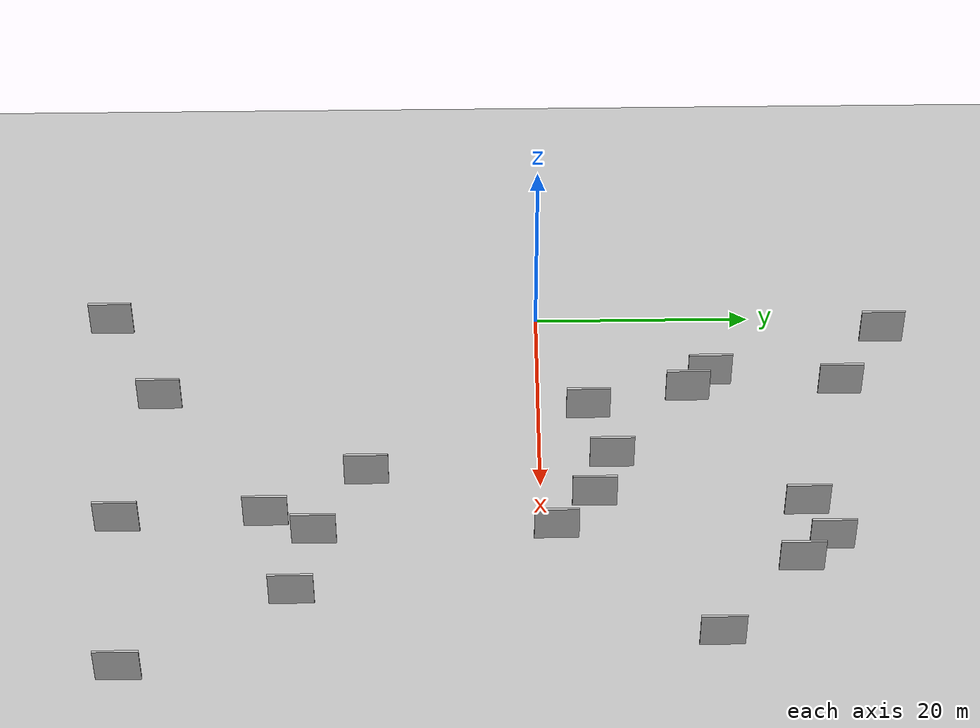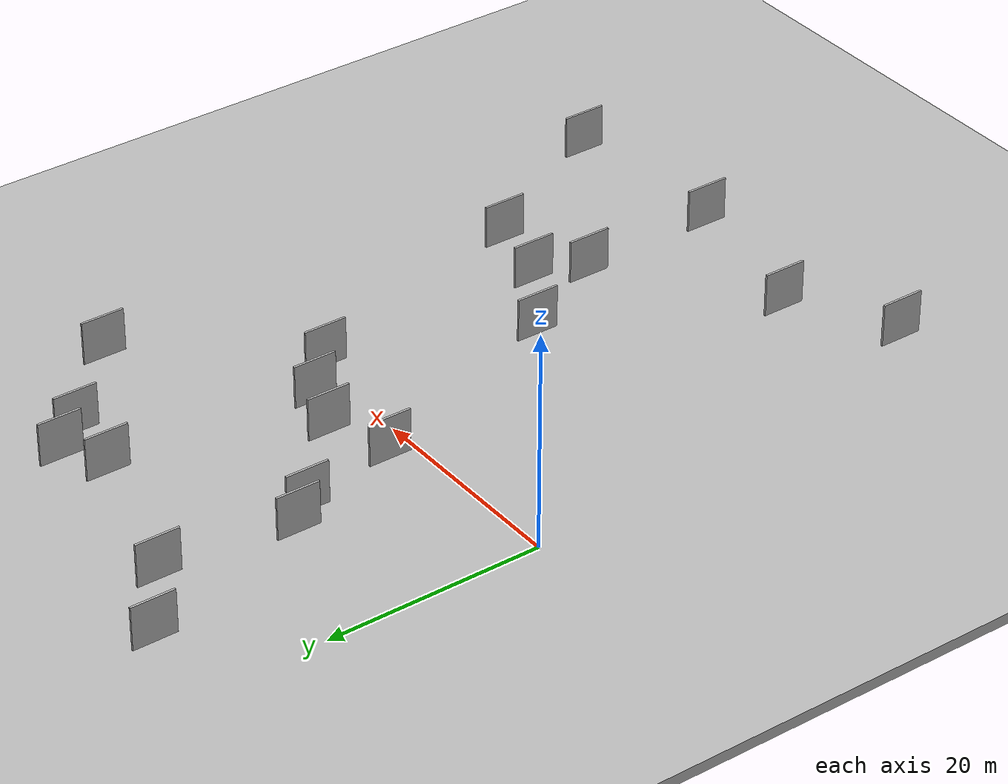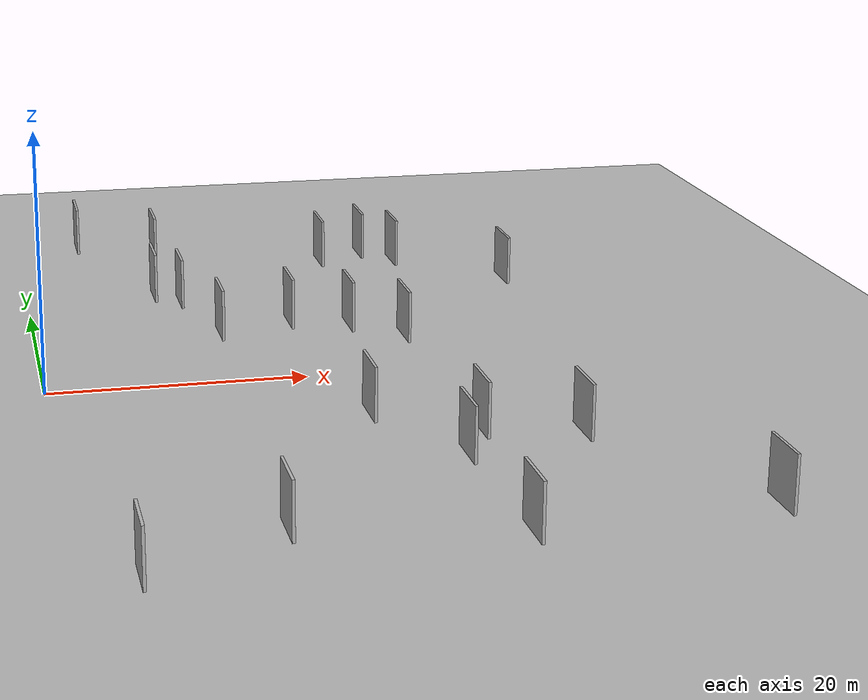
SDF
<?xml version="1.0" encoding="utf-8"?>

<sdf version="1.6">

   <world name="default">

      <gui fullscreen="0">

         <camera name="user_camera">

            <pose>-15 0 4.57585 0 0 0</pose>

            <view_controller>orbit</view_controller>

         </camera>

      </gui>

      <scene>

         <sky>

           <clouds>

             <speed>12</speed>

           </clouds>

         </sky>

         <ambient>0.4 0.4 0.4 1</ambient>

         <background>0.7 0.7 0.7 1</background>

         <shadows>1</shadows>

      </scene>

      <gravity>0 0 -9.8066</gravity>

      <magnetic_field>6e-06 2.3e-05 -4.2e-05</magnetic_field>

      <physics default="0" name="default_physics" type="ode">

         <ode>

            <solver>

               <type>quick</type>

               <iters>10</iters>

               <sor>1.0</sor>

               <use_dynamic_moi_rescaling>0</use_dynamic_moi_rescaling>

            </solver>

            <constraints>

               <cfm>0</cfm>

               <erp>0.2</erp>

               <contact_max_correcting_vel>100</contact_max_correcting_vel>

               <contact_surface_layer>0.001</contact_surface_layer>

            </constraints>

         </ode>

         <max_step_size>0.004</max_step_size>

         <real_time_factor>1</real_time_factor>

         <real_time_update_rate>250</real_time_update_rate>

      </physics>

      <light name="sun" type="directional">

         <cast_shadows>1</cast_shadows>

         <pose>0 0 10 0 0 0</pose>

         <diffuse>0.8 0.8 0.8 1</diffuse>

         <specular>0.2 0.2 0.2 1</specular>

         <attenuation>

            <range>1000</range>

            <constant>0.9</constant>

            <linear>0.01</linear>

            <quadratic>0.001</quadratic>

         </attenuation>

         <direction>-0.5 0.1 -0.9</direction>

      </light>

      <include>

         <name>ground_plane_1</name>

         <uri>model://HANNAS_ground_plane</uri>

         <pose>0 0 0  0 0 0</pose>

      </include>

      <include>

         <name>ground_plane_2</name>

         <uri>model://HANNAS_ground_plane</uri>

         <pose>100 0 0  0 0 0</pose>

      </include>

      <model name="HANNAS_wall_1">

         <static>1</static>

         <pose frame="">11.3279 27.7299 2.5 0.000000 0.000000 1.570796</pose>

         <link name="link">

            <pose frame="">0 0 2.00 0 0 0</pose>

            <collision name="collision">

               <geometry>

                  <box>

                     <size>4.00 0.2 4.00</size>

                  </box>

               </geometry>

               <max_contacts>10</max_contacts>

               <surface>

                  <contact>

                     <ode/>

                  </contact>

                  <bounce/>

                  <friction>

                     <torsional>

                        <ode/>

                     </torsional>

                     <ode/>

                  </friction>

               </surface>

            </collision>

            <visual name="visual">

               <cast_shadows>0</cast_shadows>

               <geometry>

                  <box>

                     <size>4.00 0.2 4.00</size>

                  </box>

               </geometry>

               <material>

                  <script>

                     <uri>model://HANNAS_wall/materials/scripts</uri>

                     <uri>model://HANNAS_wall/materials/textures</uri>

                     <name>vrc/HANNAS_wall</name>

                  </script>

               </material>

            </visual>

            <self_collide>0</self_collide>

            <enable_wind>0</enable_wind>

            <kinematic>0</kinematic>

         </link>

      </model>

      <model name="HANNAS_wall_2">

         <static>1</static>

         <pose frame="">11.9432 13.6432 2.5 0.000000 0.000000 1.570796</pose>

         <link name="link">

            <pose frame="">0 0 2.00 0 0 0</pose>

            <collision name="collision">

               <geometry>

                  <box>

                     <size>4.00 0.2 4.00</size>

                  </box>

               </geometry>

               <max_contacts>10</max_contacts>

               <surface>

                  <contact>

                     <ode/>

                  </contact>

                  <bounce/>

                  <friction>

                     <torsional>

                        <ode/>

                     </torsional>

                     <ode/>

                  </friction>

               </surface>

            </collision>

            <visual name="visual">

               <cast_shadows>0</cast_shadows>

               <geometry>

                  <box>

                     <size>4.00 0.2 4.00</size>

                  </box>

               </geometry>

               <material>

                  <script>

                     <uri>model://HANNAS_wall/materials/scripts</uri>

                     <uri>model://HANNAS_wall/materials/textures</uri>

                     <name>vrc/HANNAS_wall</name>

                  </script>

               </material>

            </visual>

            <self_collide>0</self_collide>

            <enable_wind>0</enable_wind>

            <kinematic>0</kinematic>

         </link>

      </model>

      <model name="HANNAS_wall_3">

         <static>1</static>

         <pose frame="">12.3072 -34.8202 2.5 0.000000 0.000000 1.570796</pose>

         <link name="link">

            <pose frame="">0 0 2.00 0 0 0</pose>

            <collision name="collision">

               <geometry>

                  <box>

                     <size>4.00 0.2 4.00</size>

                  </box>

               </geometry>

               <max_contacts>10</max_contacts>

               <surface>

                  <contact>

                     <ode/>

                  </contact>

                  <bounce/>

                  <friction>

                     <torsional>

                        <ode/>

                     </torsional>

                     <ode/>

                  </friction>

               </surface>

            </collision>

            <visual name="visual">

               <cast_shadows>0</cast_shadows>

               <geometry>

                  <box>

                     <size>4.00 0.2 4.00</size>

                  </box>

               </geometry>

               <material>

                  <script>

                     <uri>model://HANNAS_wall/materials/scripts</uri>

                     <uri>model://HANNAS_wall/materials/textures</uri>

                     <name>vrc/HANNAS_wall</name>

                  </script>

               </material>

            </visual>

            <self_collide>0</self_collide>

            <enable_wind>0</enable_wind>

            <kinematic>0</kinematic>

         </link>

      </model>

      <model name="HANNAS_wall_4">

         <static>1</static>

         <pose frame="">21.4524 -15.7537 2.5 0.000000 0.000000 1.570796</pose>

         <link name="link">

            <pose frame="">0 0 2.00 0 0 0</pose>

            <collision name="collision">

               <geometry>

                  <box>

                     <size>4.00 0.2 4.00</size>

                  </box>

               </geometry>

               <max_contacts>10</max_contacts>

               <surface>

                  <contact>

                     <ode/>

                  </contact>

                  <bounce/>

                  <friction>

                     <torsional>

                        <ode/>

                     </torsional>

                     <ode/>

                  </friction>

               </surface>

            </collision>

            <visual name="visual">

               <cast_shadows>0</cast_shadows>

               <geometry>

                  <box>

                     <size>4.00 0.2 4.00</size>

                  </box>

               </geometry>

               <material>

                  <script>

                     <uri>model://HANNAS_wall/materials/scripts</uri>

                     <uri>model://HANNAS_wall/materials/textures</uri>

                     <name>vrc/HANNAS_wall</name>

                  </script>

               </material>

            </visual>

            <self_collide>0</self_collide>

            <enable_wind>0</enable_wind>

            <kinematic>0</kinematic>

         </link>

      </model>

      <model name="HANNAS_wall_5">

         <static>1</static>

         <pose frame="">28.1793 -20.3372 2.5 0.000000 0.000000 1.570796</pose>

         <link name="link">

            <pose frame="">0 0 2.00 0 0 0</pose>

            <collision name="collision">

               <geometry>

                  <box>

                     <size>4.00 0.2 4.00</size>

                  </box>

               </geometry>

               <max_contacts>10</max_contacts>

               <surface>

                  <contact>

                     <ode/>

                  </contact>

                  <bounce/>

                  <friction>

                     <torsional>

                        <ode/>

                     </torsional>

                     <ode/>

                  </friction>

               </surface>

            </collision>

            <visual name="visual">

               <cast_shadows>0</cast_shadows>

               <geometry>

                  <box>

                     <size>4.00 0.2 4.00</size>

                  </box>

               </geometry>

               <material>

                  <script>

                     <uri>model://HANNAS_wall/materials/scripts</uri>

                     <uri>model://HANNAS_wall/materials/textures</uri>

                     <name>vrc/HANNAS_wall</name>

                  </script>

               </material>

            </visual>

            <self_collide>0</self_collide>

            <enable_wind>0</enable_wind>

            <kinematic>0</kinematic>

         </link>

      </model>

      <model name="HANNAS_wall_6">

         <static>1</static>

         <pose frame="">34.8223 -22.1584 2.5 0.000000 0.000000 1.570796</pose>

         <link name="link">

            <pose frame="">0 0 2.00 0 0 0</pose>

            <collision name="collision">

               <geometry>

                  <box>

                     <size>4.00 0.2 4.00</size>

                  </box>

               </geometry>

               <max_contacts>10</max_contacts>

               <surface>

                  <contact>

                     <ode/>

                  </contact>

                  <bounce/>

                  <friction>

                     <torsional>

                        <ode/>

                     </torsional>

                     <ode/>

                  </friction>

               </surface>

            </collision>

            <visual name="visual">

               <cast_shadows>0</cast_shadows>

               <geometry>

                  <box>

                     <size>4.00 0.2 4.00</size>

                  </box>

               </geometry>

               <material>

                  <script>

                     <uri>model://HANNAS_wall/materials/scripts</uri>

                     <uri>model://HANNAS_wall/materials/textures</uri>

                     <name>vrc/HANNAS_wall</name>

                  </script>

               </material>

            </visual>

            <self_collide>0</self_collide>

            <enable_wind>0</enable_wind>

            <kinematic>0</kinematic>

         </link>

      </model>

      <model name="HANNAS_wall_7">

         <static>1</static>

         <pose frame="">3.0180 -39.7658 2.5 0.000000 0.000000 1.570796</pose>

         <link name="link">

            <pose frame="">0 0 2.00 0 0 0</pose>

            <collision name="collision">

               <geometry>

                  <box>

                     <size>4.00 0.2 4.00</size>

                  </box>

               </geometry>

               <max_contacts>10</max_contacts>

               <surface>

                  <contact>

                     <ode/>

                  </contact>

                  <bounce/>

                  <friction>

                     <torsional>

                        <ode/>

                     </torsional>

                     <ode/>

                  </friction>

               </surface>

            </collision>

            <visual name="visual">

               <cast_shadows>0</cast_shadows>

               <geometry>

                  <box>

                     <size>4.00 0.2 4.00</size>

                  </box>

               </geometry>

               <material>

                  <script>

                     <uri>model://HANNAS_wall/materials/scripts</uri>

                     <uri>model://HANNAS_wall/materials/textures</uri>

                     <name>vrc/HANNAS_wall</name>

                  </script>

               </material>

            </visual>

            <self_collide>0</self_collide>

            <enable_wind>0</enable_wind>

            <kinematic>0</kinematic>

         </link>

      </model>

      <model name="HANNAS_wall_8">

         <static>1</static>

         <pose frame="">42.8050 -36.8246 2.5 0.000000 0.000000 1.570796</pose>

         <link name="link">

            <pose frame="">0 0 2.00 0 0 0</pose>

            <collision name="collision">

               <geometry>

                  <box>

                     <size>4.00 0.2 4.00</size>

                  </box>

               </geometry>

               <max_contacts>10</max_contacts>

               <surface>

                  <contact>

                     <ode/>

                  </contact>

                  <bounce/>

                  <friction>

                     <torsional>

                        <ode/>

                     </torsional>

                     <ode/>

                  </friction>

               </surface>

            </collision>

            <visual name="visual">

               <cast_shadows>0</cast_shadows>

               <geometry>

                  <box>

                     <size>4.00 0.2 4.00</size>

                  </box>

               </geometry>

               <material>

                  <script>

                     <uri>model://HANNAS_wall/materials/scripts</uri>

                     <uri>model://HANNAS_wall/materials/textures</uri>

                     <name>vrc/HANNAS_wall</name>

                  </script>

               </material>

            </visual>

            <self_collide>0</self_collide>

            <enable_wind>0</enable_wind>

            <kinematic>0</kinematic>

         </link>

      </model>

      <model name="HANNAS_wall_9">

         <static>1</static>

         <pose frame="">26.0942 -24.6708 2.5 0.000000 0.000000 1.570796</pose>

         <link name="link">

            <pose frame="">0 0 2.00 0 0 0</pose>

            <collision name="collision">

               <geometry>

                  <box>

                     <size>4.00 0.2 4.00</size>

                  </box>

               </geometry>

               <max_contacts>10</max_contacts>

               <surface>

                  <contact>

                     <ode/>

                  </contact>

                  <bounce/>

                  <friction>

                     <torsional>

                        <ode/>

                     </torsional>

                     <ode/>

                  </friction>

               </surface>

            </collision>

            <visual name="visual">

               <cast_shadows>0</cast_shadows>

               <geometry>

                  <box>

                     <size>4.00 0.2 4.00</size>

                  </box>

               </geometry>

               <material>

                  <script>

                     <uri>model://HANNAS_wall/materials/scripts</uri>

                     <uri>model://HANNAS_wall/materials/textures</uri>

                     <name>vrc/HANNAS_wall</name>

                  </script>

               </material>

            </visual>

            <self_collide>0</self_collide>

            <enable_wind>0</enable_wind>

            <kinematic>0</kinematic>

         </link>

      </model>

      <model name="HANNAS_wall_10">

         <static>1</static>

         <pose frame="">10.0370 15.7796 2.5 0.000000 0.000000 1.570796</pose>

         <link name="link">

            <pose frame="">0 0 2.00 0 0 0</pose>

            <collision name="collision">

               <geometry>

                  <box>

                     <size>4.00 0.2 4.00</size>

                  </box>

               </geometry>

               <max_contacts>10</max_contacts>

               <surface>

                  <contact>

                     <ode/>

                  </contact>

                  <bounce/>

                  <friction>

                     <torsional>

                        <ode/>

                     </torsional>

                     <ode/>

                  </friction>

               </surface>

            </collision>

            <visual name="visual">

               <cast_shadows>0</cast_shadows>

               <geometry>

                  <box>

                     <size>4.00 0.2 4.00</size>

                  </box>

               </geometry>

               <material>

                  <script>

                     <uri>model://HANNAS_wall/materials/scripts</uri>

                     <uri>model://HANNAS_wall/materials/textures</uri>

                     <name>vrc/HANNAS_wall</name>

                  </script>

               </material>

            </visual>

            <self_collide>0</self_collide>

            <enable_wind>0</enable_wind>

            <kinematic>0</kinematic>

         </link>

      </model>

      <model name="HANNAS_wall_11">

         <static>1</static>

         <pose frame="">31.7550 22.7515 2.5 0.000000 0.000000 1.570796</pose>

         <link name="link">

            <pose frame="">0 0 2.00 0 0 0</pose>

            <collision name="collision">

               <geometry>

                  <box>

                     <size>4.00 0.2 4.00</size>

                  </box>

               </geometry>

               <max_contacts>10</max_contacts>

               <surface>

                  <contact>

                     <ode/>

                  </contact>

                  <bounce/>

                  <friction>

                     <torsional>

                        <ode/>

                     </torsional>

                     <ode/>

                  </friction>

               </surface>

            </collision>

            <visual name="visual">

               <cast_shadows>0</cast_shadows>

               <geometry>

                  <box>

                     <size>4.00 0.2 4.00</size>

                  </box>

               </geometry>

               <material>

                  <script>

                     <uri>model://HANNAS_wall/materials/scripts</uri>

                     <uri>model://HANNAS_wall/materials/textures</uri>

                     <name>vrc/HANNAS_wall</name>

                  </script>

               </material>

            </visual>

            <self_collide>0</self_collide>

            <enable_wind>0</enable_wind>

            <kinematic>0</kinematic>

         </link>

      </model>

      <model name="HANNAS_wall_12">

         <static>1</static>

         <pose frame="">25.4483 23.6655 2.5 0.000000 0.000000 1.570796</pose>

         <link name="link">

            <pose frame="">0 0 2.00 0 0 0</pose>

            <collision name="collision">

               <geometry>

                  <box>

                     <size>4.00 0.2 4.00</size>

                  </box>

               </geometry>

               <max_contacts>10</max_contacts>

               <surface>

                  <contact>

                     <ode/>

                  </contact>

                  <bounce/>

                  <friction>

                     <torsional>

                        <ode/>

                     </torsional>

                     <ode/>

                  </friction>

               </surface>

            </collision>

            <visual name="visual">

               <cast_shadows>0</cast_shadows>

               <geometry>

                  <box>

                     <size>4.00 0.2 4.00</size>

                  </box>

               </geometry>

               <material>

                  <script>

                     <uri>model://HANNAS_wall/materials/scripts</uri>

                     <uri>model://HANNAS_wall/materials/textures</uri>

                     <name>vrc/HANNAS_wall</name>

                  </script>

               </material>

            </visual>

            <self_collide>0</self_collide>

            <enable_wind>0</enable_wind>

            <kinematic>0</kinematic>

         </link>

      </model>

      <model name="HANNAS_wall_13">

         <static>1</static>

         <pose frame="">27.8572 1.2253 2.5 0.000000 0.000000 1.570796</pose>

         <link name="link">

            <pose frame="">0 0 2.00 0 0 0</pose>

            <collision name="collision">

               <geometry>

                  <box>

                     <size>4.00 0.2 4.00</size>

                  </box>

               </geometry>

               <max_contacts>10</max_contacts>

               <surface>

                  <contact>

                     <ode/>

                  </contact>

                  <bounce/>

                  <friction>

                     <torsional>

                        <ode/>

                     </torsional>

                     <ode/>

                  </friction>

               </surface>

            </collision>

            <visual name="visual">

               <cast_shadows>0</cast_shadows>

               <geometry>

                  <box>

                     <size>4.00 0.2 4.00</size>

                  </box>

               </geometry>

               <material>

                  <script>

                     <uri>model://HANNAS_wall/materials/scripts</uri>

                     <uri>model://HANNAS_wall/materials/textures</uri>

                     <name>vrc/HANNAS_wall</name>

                  </script>

               </material>

            </visual>

            <self_collide>0</self_collide>

            <enable_wind>0</enable_wind>

            <kinematic>0</kinematic>

         </link>

      </model>

      <model name="HANNAS_wall_14">

         <static>1</static>

         <pose frame="">19.7218 6.4146 2.5 0.000000 0.000000 1.570796</pose>

         <link name="link">

            <pose frame="">0 0 2.00 0 0 0</pose>

            <collision name="collision">

               <geometry>

                  <box>

                     <size>4.00 0.2 4.00</size>

                  </box>

               </geometry>

               <max_contacts>10</max_contacts>

               <surface>

                  <contact>

                     <ode/>

                  </contact>

                  <bounce/>

                  <friction>

                     <torsional>

                        <ode/>

                     </torsional>

                     <ode/>

                  </friction>

               </surface>

            </collision>

            <visual name="visual">

               <cast_shadows>0</cast_shadows>

               <geometry>

                  <box>

                     <size>4.00 0.2 4.00</size>

                  </box>

               </geometry>

               <material>

                  <script>

                     <uri>model://HANNAS_wall/materials/scripts</uri>

                     <uri>model://HANNAS_wall/materials/textures</uri>

                     <name>vrc/HANNAS_wall</name>

                  </script>

               </material>

            </visual>

            <self_collide>0</self_collide>

            <enable_wind>0</enable_wind>

            <kinematic>0</kinematic>

         </link>

      </model>

      <model name="HANNAS_wall_15">

         <static>1</static>

         <pose frame="">24.1960 4.7145 2.5 0.000000 0.000000 1.570796</pose>

         <link name="link">

            <pose frame="">0 0 2.00 0 0 0</pose>

            <collision name="collision">

               <geometry>

                  <box>

                     <size>4.00 0.2 4.00</size>

                  </box>

               </geometry>

               <max_contacts>10</max_contacts>

               <surface>

                  <contact>

                     <ode/>

                  </contact>

                  <bounce/>

                  <friction>

                     <torsional>

                        <ode/>

                     </torsional>

                     <ode/>

                  </friction>

               </surface>

            </collision>

            <visual name="visual">

               <cast_shadows>0</cast_shadows>

               <geometry>

                  <box>

                     <size>4.00 0.2 4.00</size>

                  </box>

               </geometry>

               <material>

                  <script>

                     <uri>model://HANNAS_wall/materials/scripts</uri>

                     <uri>model://HANNAS_wall/materials/textures</uri>

                     <name>vrc/HANNAS_wall</name>

                  </script>

               </material>

            </visual>

            <self_collide>0</self_collide>

            <enable_wind>0</enable_wind>

            <kinematic>0</kinematic>

         </link>

      </model>

      <model name="HANNAS_wall_16">

         <static>1</static>

         <pose frame="">39.7484 15.3168 2.5 0.000000 0.000000 1.570796</pose>

         <link name="link">

            <pose frame="">0 0 2.00 0 0 0</pose>

            <collision name="collision">

               <geometry>

                  <box>

                     <size>4.00 0.2 4.00</size>

                  </box>

               </geometry>

               <max_contacts>10</max_contacts>

               <surface>

                  <contact>

                     <ode/>

                  </contact>

                  <bounce/>

                  <friction>

                     <torsional>

                        <ode/>

                     </torsional>

                     <ode/>

                  </friction>

               </surface>

            </collision>

            <visual name="visual">

               <cast_shadows>0</cast_shadows>

               <geometry>

                  <box>

                     <size>4.00 0.2 4.00</size>

                  </box>

               </geometry>

               <material>

                  <script>

                     <uri>model://HANNAS_wall/materials/scripts</uri>

                     <uri>model://HANNAS_wall/materials/textures</uri>

                     <name>vrc/HANNAS_wall</name>

                  </script>

               </material>

            </visual>

            <self_collide>0</self_collide>

            <enable_wind>0</enable_wind>

            <kinematic>0</kinematic>

         </link>

      </model>

      <model name="HANNAS_wall_17">

         <static>1</static>

         <pose frame="">4.9492 32.0848 2.5 0.000000 0.000000 1.570796</pose>

         <link name="link">

            <pose frame="">0 0 2.00 0 0 0</pose>

            <collision name="collision">

               <geometry>

                  <box>

                     <size>4.00 0.2 4.00</size>

                  </box>

               </geometry>

               <max_contacts>10</max_contacts>

               <surface>

                  <contact>

                     <ode/>

                  </contact>

                  <bounce/>

                  <friction>

                     <torsional>

                        <ode/>

                     </torsional>

                     <ode/>

                  </friction>

               </surface>

            </collision>

            <visual name="visual">

               <cast_shadows>0</cast_shadows>

               <geometry>

                  <box>

                     <size>4.00 0.2 4.00</size>

                  </box>

               </geometry>

               <material>

                  <script>

                     <uri>model://HANNAS_wall/materials/scripts</uri>

                     <uri>model://HANNAS_wall/materials/textures</uri>

                     <name>vrc/HANNAS_wall</name>

                  </script>

               </material>

            </visual>

            <self_collide>0</self_collide>

            <enable_wind>0</enable_wind>

            <kinematic>0</kinematic>

         </link>

      </model>

      <model name="HANNAS_wall_18">

         <static>1</static>

         <pose frame="">13.9330 4.4557 2.5 0.000000 0.000000 1.570796</pose>

         <link name="link">

            <pose frame="">0 0 2.00 0 0 0</pose>

            <collision name="collision">

               <geometry>

                  <box>

                     <size>4.00 0.2 4.00</size>

                  </box>

               </geometry>

               <max_contacts>10</max_contacts>

               <surface>

                  <contact>

                     <ode/>

                  </contact>

                  <bounce/>

                  <friction>

                     <torsional>

                        <ode/>

                     </torsional>

                     <ode/>

                  </friction>

               </surface>

            </collision>

            <visual name="visual">

               <cast_shadows>0</cast_shadows>

               <geometry>

                  <box>

                     <size>4.00 0.2 4.00</size>

                  </box>

               </geometry>

               <material>

                  <script>

                     <uri>model://HANNAS_wall/materials/scripts</uri>

                     <uri>model://HANNAS_wall/materials/textures</uri>

                     <name>vrc/HANNAS_wall</name>

                  </script>

               </material>

            </visual>

            <self_collide>0</self_collide>

            <enable_wind>0</enable_wind>

            <kinematic>0</kinematic>

         </link>

      </model>

      <model name="HANNAS_wall_19">

         <static>1</static>

         <pose frame="">29.3693 25.6137 2.5 0.000000 0.000000 1.570796</pose>

         <link name="link">

            <pose frame="">0 0 2.00 0 0 0</pose>

            <collision name="collision">

               <geometry>

                  <box>

                     <size>4.00 0.2 4.00</size>

                  </box>

               </geometry>

               <max_contacts>10</max_contacts>

               <surface>

                  <contact>

                     <ode/>

                  </contact>

                  <bounce/>

                  <friction>

                     <torsional>

                        <ode/>

                     </torsional>

                     <ode/>

                  </friction>

               </surface>

            </collision>

            <visual name="visual">

               <cast_shadows>0</cast_shadows>

               <geometry>

                  <box>

                     <size>4.00 0.2 4.00</size>

                  </box>

               </geometry>

               <material>

                  <script>

                     <uri>model://HANNAS_wall/materials/scripts</uri>

                     <uri>model://HANNAS_wall/materials/textures</uri>

                     <name>vrc/HANNAS_wall</name>

                  </script>

               </material>

            </visual>

            <self_collide>0</self_collide>

            <enable_wind>0</enable_wind>

            <kinematic>0</kinematic>

         </link>

      </model>

      <model name="HANNAS_wall_20">

         <static>1</static>

         <pose frame="">26.5864 -37.8983 2.5 0.000000 0.000000 1.570796</pose>

         <link name="link">

            <pose frame="">0 0 2.00 0 0 0</pose>

            <collision name="collision">

               <geometry>

                  <box>

                     <size>4.00 0.2 4.00</size>

                  </box>

               </geometry>

               <max_contacts>10</max_contacts>

               <surface>

                  <contact>

                     <ode/>

                  </contact>

                  <bounce/>

                  <friction>

                     <torsional>

                        <ode/>

                     </torsional>

                     <ode/>

                  </friction>

               </surface>

            </collision>

            <visual name="visual">

               <cast_shadows>0</cast_shadows>

               <geometry>

                  <box>

                     <size>4.00 0.2 4.00</size>

                  </box>

               </geometry>

               <material>

                  <script>

                     <uri>model://HANNAS_wall/materials/scripts</uri>

                     <uri>model://HANNAS_wall/materials/textures</uri>

                     <name>vrc/HANNAS_wall</name>

                  </script>

               </material>

            </visual>

            <self_collide>0</self_collide>

            <enable_wind>0</enable_wind>

            <kinematic>0</kinematic>

         </link>

      </model>

   </world>

</sdf>

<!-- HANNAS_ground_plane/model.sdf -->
<sdf version="1.4">
<model name="HANNAS_ground_plane">
  <static>true</static>
    <link name="link">
      <collision name="collision">
        <geometry>
          <plane>
            <normal>0 0 1</normal>
            <size>1000 1000</size>
          </plane>
        </geometry>
        <surface>
          <friction>
            <ode>
              <mu>100</mu>
              <mu2>50</mu2>
            </ode>
          </friction>
        </surface>
      </collision>
      <visual name="visual">
        <cast_shadows>false</cast_shadows>
        <geometry>
          <plane>
            <normal>0 0 1</normal>
            <size>1000 1000</size>
          </plane>
        </geometry>
        <material>
          <script>
            <uri>model://HANNAS_ground_plane/materials/scripts/HANNAS_ground_plane.material</uri>
	    <uri>model://HANNAS_ground_plane/materials/textures</uri>
            <name>HANNASGroundPlane/Image</name>
          </script>
        </material>
      </visual>
    </link>
  </model>
</sdf>
